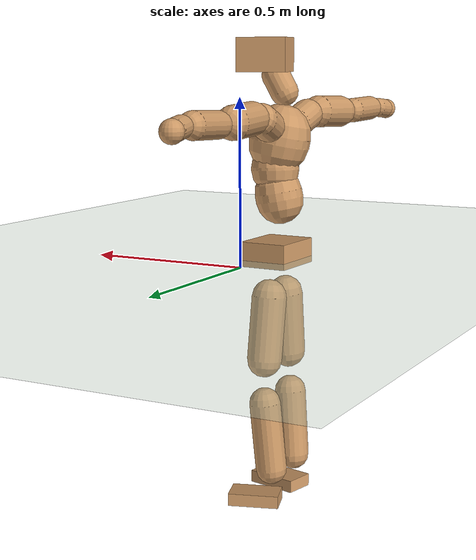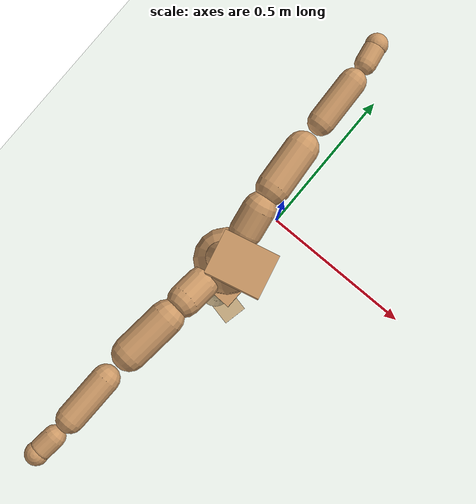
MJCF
<mujoco model="humanoid">
  <compiler coordinate="local" angle="radian"/>
  <default>
    <joint damping="0.0" armature="0.01" stiffness="0.0" limited="true"/>
    <geom conaffinity="1" condim="3" contype="7" margin="0.001" rgba="0.8 0.6 .4 1"/>
  </default>
  <asset>
    <texture type="skybox" builtin="gradient" rgb1=".4 .5 .6" rgb2="0 0 0" width="100" height="100"/>
    <texture builtin="flat" height="1278" mark="cross" markrgb="1 1 1" name="texgeom" random="0.01" rgb1="0.8 0.6 0.4" rgb2="0.8 0.6 0.4" type="cube" width="127"/>
    <texture builtin="checker" height="100" name="texplane" rgb1="0 0 0" rgb2="0.8 0.8 0.8" type="2d" width="100"/>
    <material name="MatPlane" reflectance="0.5" shininess="1" specular="1" texrepeat="60 60" texture="texplane"/>
    <material name="geom" texture="texgeom" texuniform="true"/>
  </asset>
  <worldbody>
    <light cutoff="100" diffuse="1 1 1" dir="-0 0 -1.3" directional="true" exponent="1" pos="0 0 1.3" specular=".1 .1 .1"/>
    <geom conaffinity="1" condim="3" name="floor" pos="0 0 0" rgba="0.8 0.9 0.8 1" size="100 100 .2" type="plane" material="MatPlane"/>
    <body name="Pelvis" pos="-0.0017 -0.2192 0.0243">
      <freejoint name="Pelvis"/>
      <geom type="box" contype="1" conaffinity="1" density="500" pos="-0.0099 0.0003 -0.0074" size="0.0748 0.0939 0.0386" quat="0.9999 0.0000 0.0000 -0.0145" name="Pelvis"/>
      <body name="L_Hip" pos="-0.016 0.0516 -0.0725">
        <joint name="L_Hip_x" type="hinge" pos="0 0 0" axis="1 0 0" stiffness="800" damping="80" armature="0.02" range="-180.0000 180.0000"/>
        <joint name="L_Hip_y" type="hinge" pos="0 0 0" axis="0 1 0" stiffness="800" damping="80" armature="0.02" range="-180.0000 180.0000"/>
        <joint name="L_Hip_z" type="hinge" pos="0 0 0" axis="0 0 1" stiffness="800" damping="80" armature="0.02" range="-180.0000 180.0000"/>
        <geom type="capsule" contype="1" conaffinity="1" density="500" fromto="0.0017 0.0072 -0.0661 0.0068 0.0288 -0.2644" size="0.0539" name="L_Hip"/>
        <body name="L_Knee" pos="0.0085 0.036 -0.3305">
          <joint name="L_Knee_x" type="hinge" pos="0 0 0" axis="1 0 0" stiffness="800" damping="80" armature="0.02" range="-180.0000 180.0000"/>
          <joint name="L_Knee_y" type="hinge" pos="0 0 0" axis="0 1 0" stiffness="800" damping="80" armature="0.02" range="-180.0000 180.0000"/>
          <joint name="L_Knee_z" type="hinge" pos="0 0 0" axis="0 0 1" stiffness="800" damping="80" armature="0.02" range="-180.0000 180.0000"/>
          <geom type="capsule" contype="1" conaffinity="1" density="500" fromto="-0.0064 -0.0025 -0.0711 -0.0256 -0.0102 -0.2845" size="0.0488" name="L_Knee"/>
          <body name="L_Ankle" pos="-0.0319 -0.0127 -0.3557">
            <joint name="L_Ankle_x" type="hinge" pos="0 0 0" axis="1 0 0" stiffness="800" damping="80" armature="0.02" range="-180.0000 180.0000"/>
            <joint name="L_Ankle_y" type="hinge" pos="0 0 0" axis="0 1 0" stiffness="800" damping="80" armature="0.02" range="-180.0000 180.0000"/>
            <joint name="L_Ankle_z" type="hinge" pos="0 0 0" axis="0 0 1" stiffness="800" damping="80" armature="0.02" range="-180.0000 180.0000"/>
            <geom type="box" contype="1" conaffinity="1" density="500" pos="0.0552 0.0178 -0.0258" size="0.0795 0.0465 0.0196" quat="0.9878 0.0000 0.0000 0.1555" name="L_Ankle"/>
            <body name="L_Toe" pos="0.1104 0.0356 -0.0517">
              <joint name="L_Toe_x" type="hinge" pos="0 0 0" axis="1 0 0" stiffness="500" damping="50" armature="0.02" range="-180.0000 180.0000"/>
              <joint name="L_Toe_y" type="hinge" pos="0 0 0" axis="0 1 0" stiffness="500" damping="50" armature="0.02" range="-180.0000 180.0000"/>
              <joint name="L_Toe_z" type="hinge" pos="0 0 0" axis="0 0 1" stiffness="500" damping="50" armature="0.02" range="-180.0000 180.0000"/>
              <geom type="box" contype="1" conaffinity="1" density="500" pos="0.0000 0.0000 0.0251" size="0.001 0.0023 0.0009" quat="0.9870 0.0000 0.0000 0.1608" name="L_Toe"/>
            </body>
          </body>
        </body>
      </body>
      <body name="R_Hip" pos="-0.012 -0.0535 -0.0803">
        <joint name="R_Hip_x" type="hinge" pos="0 0 0" axis="1 0 0" stiffness="800" damping="80" armature="0.02" range="-180.0000 180.0000"/>
        <joint name="R_Hip_y" type="hinge" pos="0 0 0" axis="0 1 0" stiffness="800" damping="80" armature="0.02" range="-180.0000 180.0000"/>
        <joint name="R_Hip_z" type="hinge" pos="0 0 0" axis="0 0 1" stiffness="800" damping="80" armature="0.02" range="-180.0000 180.0000"/>
        <geom type="capsule" contype="1" conaffinity="1" density="500" fromto="-0.0003 -0.0069 -0.0650 -0.0012 -0.0275 -0.2601" size="0.0535" name="R_Hip"/>
        <body name="R_Knee" pos="-0.0015 -0.0344 -0.3252">
          <joint name="R_Knee_x" type="hinge" pos="0 0 0" axis="1 0 0" stiffness="800" damping="80" armature="0.02" range="-180.0000 180.0000"/>
          <joint name="R_Knee_y" type="hinge" pos="0 0 0" axis="0 1 0" stiffness="800" damping="80" armature="0.02" range="-180.0000 180.0000"/>
          <joint name="R_Knee_z" type="hinge" pos="0 0 0" axis="0 0 1" stiffness="800" damping="80" armature="0.02" range="-180.0000 180.0000"/>
          <geom type="capsule" contype="1" conaffinity="1" density="500" fromto="-0.0058 0.0032 -0.0696 -0.0233 0.0128 -0.2783" size="0.0497" name="R_Knee"/>
          <body name="R_Ankle" pos="-0.0291 0.016 -0.3479">
            <joint name="R_Ankle_x" type="hinge" pos="0 0 0" axis="1 0 0" stiffness="800" damping="80" armature="0.02" range="-180.0000 180.0000"/>
            <joint name="R_Ankle_y" type="hinge" pos="0 0 0" axis="0 1 0" stiffness="800" damping="80" armature="0.02" range="-180.0000 180.0000"/>
            <joint name="R_Ankle_z" type="hinge" pos="0 0 0" axis="0 0 1" stiffness="800" damping="80" armature="0.02" range="-180.0000 180.0000"/>
            <geom type="box" contype="1" conaffinity="1" density="500" pos="0.0587 -0.0128 -0.0271" size="0.0822 0.0478 0.0194" quat="0.9942 0.0000 0.0000 -0.1073" name="R_Ankle"/>
            <body name="R_Toe" pos="0.1175 -0.0257 -0.0542">
              <joint name="R_Toe_x" type="hinge" pos="0 0 0" axis="1 0 0" stiffness="500" damping="50" armature="0.02" range="-180.0000 180.0000"/>
              <joint name="R_Toe_y" type="hinge" pos="0 0 0" axis="0 1 0" stiffness="500" damping="50" armature="0.02" range="-180.0000 180.0000"/>
              <joint name="R_Toe_z" type="hinge" pos="0 0 0" axis="0 0 1" stiffness="500" damping="50" armature="0.02" range="-180.0000 180.0000"/>
              <geom type="box" contype="1" conaffinity="1" density="500" pos="0.0000 0.0000 0.0286" size="0.001 0.0024 0.001" quat="0.9952 0.0000 0.0000 -0.0976" name="R_Toe"/>
            </body>
          </body>
        </body>
      </body>
      <body name="Torso" pos="-0.0313 0.0036 0.1084">
        <joint name="Torso_x" type="hinge" pos="0 0 0" axis="1 0 0" stiffness="1000" damping="100" armature="0.02" range="-180.0000 180.0000"/>
        <joint name="Torso_y" type="hinge" pos="0 0 0" axis="0 1 0" stiffness="1000" damping="100" armature="0.02" range="-180.0000 180.0000"/>
        <joint name="Torso_z" type="hinge" pos="0 0 0" axis="0 0 1" stiffness="1000" damping="100" armature="0.02" range="-180.0000 180.0000"/>
        <geom type="capsule" contype="1" conaffinity="1" density="500" fromto="0.0139 0.0025 0.0724 0.0093 0.0017 0.0483" size="0.0739" name="Torso"/>
        <body name="Spine" pos="0.0231 0.0042 0.1207">
          <joint name="Spine_x" type="hinge" pos="0 0 0" axis="1 0 0" stiffness="1000" damping="100" armature="0.02" range="-180.0000 180.0000"/>
          <joint name="Spine_y" type="hinge" pos="0 0 0" axis="0 1 0" stiffness="1000" damping="100" armature="0.02" range="-180.0000 180.0000"/>
          <joint name="Spine_z" type="hinge" pos="0 0 0" axis="0 0 1" stiffness="1000" damping="100" armature="0.02" range="-180.0000 180.0000"/>
          <geom type="capsule" contype="1" conaffinity="1" density="500" fromto="0.0014 -0.0009 0.0294 0.0009 -0.0006 0.0196" size="0.0738" name="Spine"/>
          <body name="Chest" pos="0.0023 -0.0016 0.049">
            <joint name="Chest_x" type="hinge" pos="0 0 0" axis="1 0 0" stiffness="1000" damping="100" armature="0.02" range="-180.0000 180.0000"/>
            <joint name="Chest_y" type="hinge" pos="0 0 0" axis="0 1 0" stiffness="1000" damping="100" armature="0.02" range="-180.0000 180.0000"/>
            <joint name="Chest_z" type="hinge" pos="0 0 0" axis="0 0 1" stiffness="1000" damping="100" armature="0.02" range="-180.0000 180.0000"/>
            <geom type="capsule" contype="1" conaffinity="1" density="500" fromto="-0.0154 -0.0054 0.0792 -0.0103 -0.0036 0.0528" size="0.0945" name="Chest"/>
            <body name="Neck" pos="-0.0334 -0.014 0.1915">
              <joint name="Neck_x" type="hinge" pos="0 0 0" axis="1 0 0" stiffness="500" damping="50" armature="0.02" range="-180.0000 180.0000"/>
              <joint name="Neck_y" type="hinge" pos="0 0 0" axis="0 1 0" stiffness="500" damping="50" armature="0.02" range="-180.0000 180.0000"/>
              <joint name="Neck_z" type="hinge" pos="0 0 0" axis="0 0 1" stiffness="500" damping="50" armature="0.02" range="-180.0000 180.0000"/>
              <geom type="capsule" contype="1" conaffinity="1" density="500" fromto="0.0090 0.0018 0.0170 0.0360 0.0074 0.0678" size="0.0434" name="Neck"/>
              <body name="Head" pos="0.045 0.0092 0.0848">
                <joint name="Head_x" type="hinge" pos="0 0 0" axis="1 0 0" stiffness="500" damping="50" armature="0.02" range="-180.0000 180.0000"/>
                <joint name="Head_y" type="hinge" pos="0 0 0" axis="0 1 0" stiffness="500" damping="50" armature="0.02" range="-180.0000 180.0000"/>
                <joint name="Head_z" type="hinge" pos="0 0 0" axis="0 0 1" stiffness="500" damping="50" armature="0.02" range="-180.0000 180.0000"/>
                <geom type="box" contype="1" conaffinity="1" density="500" pos="0.0235 0.0056 0.0434" size="0.0763 0.0606 0.0518" quat="0.9932 0.0000 0.0000 0.1167" name="Head"/>
              </body>
            </body>
            <body name="L_Thorax" pos="-0.02 0.0656 0.1021">
              <joint name="L_Thorax_x" type="hinge" pos="0 0 0" axis="1 0 0" stiffness="500" damping="50" armature="0.02" range="-180.0000 180.0000"/>
              <joint name="L_Thorax_y" type="hinge" pos="0 0 0" axis="0 1 0" stiffness="500" damping="50" armature="0.02" range="-180.0000 180.0000"/>
              <joint name="L_Thorax_z" type="hinge" pos="0 0 0" axis="0 0 1" stiffness="500" damping="50" armature="0.02" range="-180.0000 180.0000"/>
              <geom type="capsule" contype="1" conaffinity="1" density="500" fromto="-0.0036 0.0238 0.0078 -0.0144 0.0953 0.0313" size="0.0483" name="L_Thorax"/>
              <body name="L_Shoulder" pos="-0.018 0.1191 0.0392">
                <joint name="L_Shoulder_x" type="hinge" pos="0 0 0" axis="1 0 0" stiffness="500" damping="50" armature="0.02" range="-720.0000 720.0000"/>
                <joint name="L_Shoulder_y" type="hinge" pos="0 0 0" axis="0 1 0" stiffness="500" damping="50" armature="0.02" range="-720.0000 720.0000"/>
                <joint name="L_Shoulder_z" type="hinge" pos="0 0 0" axis="0 0 1" stiffness="500" damping="50" armature="0.02" range="-720.0000 720.0000"/>
                <geom type="capsule" contype="1" conaffinity="1" density="500" fromto="-0.0035 0.0455 -0.0020 -0.0140 0.1819 -0.0080" size="0.0497" name="L_Shoulder"/>
                <body name="L_Elbow" pos="-0.0175 0.2274 -0.01">
                  <joint name="L_Elbow_x" type="hinge" pos="0 0 0" axis="1 0 0" stiffness="500" damping="50" armature="0.02" range="-720.0000 720.0000"/>
                  <joint name="L_Elbow_y" type="hinge" pos="0 0 0" axis="0 1 0" stiffness="500" damping="50" armature="0.02" range="-720.0000 720.0000"/>
                  <joint name="L_Elbow_z" type="hinge" pos="0 0 0" axis="0 0 1" stiffness="500" damping="50" armature="0.02" range="-720.0000 720.0000"/>
                  <geom type="capsule" contype="1" conaffinity="1" density="500" fromto="-0.0017 0.0473 0.0017 -0.0067 0.1892 0.0069" size="0.0396" name="L_Elbow"/>
                  <body name="L_Wrist" pos="-0.0084 0.2365 0.0087">
                    <joint name="L_Wrist_x" type="hinge" pos="0 0 0" axis="1 0 0" stiffness="300" damping="30" armature="0.02" range="-180.0000 180.0000"/>
                    <joint name="L_Wrist_y" type="hinge" pos="0 0 0" axis="0 1 0" stiffness="300" damping="30" armature="0.02" range="-180.0000 180.0000"/>
                    <joint name="L_Wrist_z" type="hinge" pos="0 0 0" axis="0 0 1" stiffness="300" damping="30" armature="0.02" range="-180.0000 180.0000"/>
                    <geom type="capsule" contype="1" conaffinity="1" density="500" fromto="-0.0028 0.0161 -0.0019 -0.0114 0.0644 -0.0078" size="0.0318" name="L_Wrist"/>
                    <body name="L_Hand" pos="-0.0142 0.0805 -0.0097">
                      <joint name="L_Hand_x" type="hinge" pos="0 0 0" axis="1 0 0" stiffness="300" damping="30" armature="0.02" range="-180.0000 180.0000"/>
                      <joint name="L_Hand_y" type="hinge" pos="0 0 0" axis="0 1 0" stiffness="300" damping="30" armature="0.02" range="-180.0000 180.0000"/>
                      <joint name="L_Hand_z" type="hinge" pos="0 0 0" axis="0 0 1" stiffness="300" damping="30" armature="0.02" range="-180.0000 180.0000"/>
                      <geom type="sphere" contype="1" conaffinity="1" density="500" size="0.0331" pos="0.0000 0.0000 0.0000" name="L_Hand"/>
                    </body>
                  </body>
                </body>
              </body>
            </body>
            <body name="R_Thorax" pos="-0.0236 -0.0785 0.1022">
              <joint name="R_Thorax_x" type="hinge" pos="0 0 0" axis="1 0 0" stiffness="500" damping="50" armature="0.02" range="-180.0000 180.0000"/>
              <joint name="R_Thorax_y" type="hinge" pos="0 0 0" axis="0 1 0" stiffness="500" damping="50" armature="0.02" range="-180.0000 180.0000"/>
              <joint name="R_Thorax_z" type="hinge" pos="0 0 0" axis="0 0 1" stiffness="500" damping="50" armature="0.02" range="-180.0000 180.0000"/>
              <geom type="capsule" contype="1" conaffinity="1" density="500" fromto="-0.0016 -0.0217 0.0081 -0.0065 -0.0867 0.0324" size="0.0487" name="R_Thorax"/>
              <body name="R_Shoulder" pos="-0.0082 -0.1084 0.0404">
                <joint name="R_Shoulder_x" type="hinge" pos="0 0 0" axis="1 0 0" stiffness="500" damping="50" armature="0.02" range="-720.0000 720.0000"/>
                <joint name="R_Shoulder_y" type="hinge" pos="0 0 0" axis="0 1 0" stiffness="500" damping="50" armature="0.02" range="-720.0000 720.0000"/>
                <joint name="R_Shoulder_z" type="hinge" pos="0 0 0" axis="0 0 1" stiffness="500" damping="50" armature="0.02" range="-720.0000 720.0000"/>
                <geom type="capsule" contype="1" conaffinity="1" density="500" fromto="-0.0049 -0.0463 -0.0015 -0.0197 -0.1853 -0.0062" size="0.0507" name="R_Shoulder"/>
                <body name="R_Elbow" pos="-0.0247 -0.2316 -0.0077">
                  <joint name="R_Elbow_x" type="hinge" pos="0 0 0" axis="1 0 0" stiffness="500" damping="50" armature="0.02" range="-720.0000 720.0000"/>
                  <joint name="R_Elbow_y" type="hinge" pos="0 0 0" axis="0 1 0" stiffness="500" damping="50" armature="0.02" range="-720.0000 720.0000"/>
                  <joint name="R_Elbow_z" type="hinge" pos="0 0 0" axis="0 0 1" stiffness="500" damping="50" armature="0.02" range="-720.0000 720.0000"/>
                  <geom type="capsule" contype="1" conaffinity="1" density="500" fromto="-0.0010 -0.0479 0.0010 -0.0038 -0.1917 0.0039" size="0.0406" name="R_Elbow"/>
                  <body name="R_Wrist" pos="-0.0048 -0.2396 0.0049">
                    <joint name="R_Wrist_x" type="hinge" pos="0 0 0" axis="1 0 0" stiffness="300" damping="30" armature="0.02" range="-180.0000 180.0000"/>
                    <joint name="R_Wrist_y" type="hinge" pos="0 0 0" axis="0 1 0" stiffness="300" damping="30" armature="0.02" range="-180.0000 180.0000"/>
                    <joint name="R_Wrist_z" type="hinge" pos="0 0 0" axis="0 0 1" stiffness="300" damping="30" armature="0.02" range="-180.0000 180.0000"/>
                    <geom type="capsule" contype="1" conaffinity="1" density="500" fromto="-0.0018 -0.0165 -0.0016 -0.0074 -0.0662 -0.0064" size="0.0327" name="R_Wrist"/>
                    <body name="R_Hand" pos="-0.0092 -0.0827 -0.0081">
                      <joint name="R_Hand_x" type="hinge" pos="0 0 0" axis="1 0 0" stiffness="300" damping="30" armature="0.02" range="-180.0000 180.0000"/>
                      <joint name="R_Hand_y" type="hinge" pos="0 0 0" axis="0 1 0" stiffness="300" damping="30" armature="0.02" range="-180.0000 180.0000"/>
                      <joint name="R_Hand_z" type="hinge" pos="0 0 0" axis="0 0 1" stiffness="300" damping="30" armature="0.02" range="-180.0000 180.0000"/>
                      <geom type="sphere" contype="1" conaffinity="1" density="500" size="0.0338" pos="0.0000 0.0000 0.0000" name="R_Hand"/>
                    </body>
                  </body>
                </body>
              </body>
            </body>
          </body>
        </body>
      </body>
    </body>
  </worldbody>
  <actuator>
    <motor name="L_Hip_x" joint="L_Hip_x" gear="500"/>
    <motor name="L_Hip_y" joint="L_Hip_y" gear="500"/>
    <motor name="L_Hip_z" joint="L_Hip_z" gear="500"/>
    <motor name="L_Knee_x" joint="L_Knee_x" gear="500"/>
    <motor name="L_Knee_y" joint="L_Knee_y" gear="500"/>
    <motor name="L_Knee_z" joint="L_Knee_z" gear="500"/>
    <motor name="L_Ankle_x" joint="L_Ankle_x" gear="500"/>
    <motor name="L_Ankle_y" joint="L_Ankle_y" gear="500"/>
    <motor name="L_Ankle_z" joint="L_Ankle_z" gear="500"/>
    <motor name="L_Toe_x" joint="L_Toe_x" gear="500"/>
    <motor name="L_Toe_y" joint="L_Toe_y" gear="500"/>
    <motor name="L_Toe_z" joint="L_Toe_z" gear="500"/>
    <motor name="R_Hip_x" joint="R_Hip_x" gear="500"/>
    <motor name="R_Hip_y" joint="R_Hip_y" gear="500"/>
    <motor name="R_Hip_z" joint="R_Hip_z" gear="500"/>
    <motor name="R_Knee_x" joint="R_Knee_x" gear="500"/>
    <motor name="R_Knee_y" joint="R_Knee_y" gear="500"/>
    <motor name="R_Knee_z" joint="R_Knee_z" gear="500"/>
    <motor name="R_Ankle_x" joint="R_Ankle_x" gear="500"/>
    <motor name="R_Ankle_y" joint="R_Ankle_y" gear="500"/>
    <motor name="R_Ankle_z" joint="R_Ankle_z" gear="500"/>
    <motor name="R_Toe_x" joint="R_Toe_x" gear="500"/>
    <motor name="R_Toe_y" joint="R_Toe_y" gear="500"/>
    <motor name="R_Toe_z" joint="R_Toe_z" gear="500"/>
    <motor name="Torso_x" joint="Torso_x" gear="500"/>
    <motor name="Torso_y" joint="Torso_y" gear="500"/>
    <motor name="Torso_z" joint="Torso_z" gear="500"/>
    <motor name="Spine_x" joint="Spine_x" gear="500"/>
    <motor name="Spine_y" joint="Spine_y" gear="500"/>
    <motor name="Spine_z" joint="Spine_z" gear="500"/>
    <motor name="Chest_x" joint="Chest_x" gear="500"/>
    <motor name="Chest_y" joint="Chest_y" gear="500"/>
    <motor name="Chest_z" joint="Chest_z" gear="500"/>
    <motor name="Neck_x" joint="Neck_x" gear="500"/>
    <motor name="Neck_y" joint="Neck_y" gear="500"/>
    <motor name="Neck_z" joint="Neck_z" gear="500"/>
    <motor name="Head_x" joint="Head_x" gear="500"/>
    <motor name="Head_y" joint="Head_y" gear="500"/>
    <motor name="Head_z" joint="Head_z" gear="500"/>
    <motor name="L_Thorax_x" joint="L_Thorax_x" gear="500"/>
    <motor name="L_Thorax_y" joint="L_Thorax_y" gear="500"/>
    <motor name="L_Thorax_z" joint="L_Thorax_z" gear="500"/>
    <motor name="L_Shoulder_x" joint="L_Shoulder_x" gear="500"/>
    <motor name="L_Shoulder_y" joint="L_Shoulder_y" gear="500"/>
    <motor name="L_Shoulder_z" joint="L_Shoulder_z" gear="500"/>
    <motor name="L_Elbow_x" joint="L_Elbow_x" gear="500"/>
    <motor name="L_Elbow_y" joint="L_Elbow_y" gear="500"/>
    <motor name="L_Elbow_z" joint="L_Elbow_z" gear="500"/>
    <motor name="L_Wrist_x" joint="L_Wrist_x" gear="500"/>
    <motor name="L_Wrist_y" joint="L_Wrist_y" gear="500"/>
    <motor name="L_Wrist_z" joint="L_Wrist_z" gear="500"/>
    <motor name="L_Hand_x" joint="L_Hand_x" gear="500"/>
    <motor name="L_Hand_y" joint="L_Hand_y" gear="500"/>
    <motor name="L_Hand_z" joint="L_Hand_z" gear="500"/>
    <motor name="R_Thorax_x" joint="R_Thorax_x" gear="500"/>
    <motor name="R_Thorax_y" joint="R_Thorax_y" gear="500"/>
    <motor name="R_Thorax_z" joint="R_Thorax_z" gear="500"/>
    <motor name="R_Shoulder_x" joint="R_Shoulder_x" gear="500"/>
    <motor name="R_Shoulder_y" joint="R_Shoulder_y" gear="500"/>
    <motor name="R_Shoulder_z" joint="R_Shoulder_z" gear="500"/>
    <motor name="R_Elbow_x" joint="R_Elbow_x" gear="500"/>
    <motor name="R_Elbow_y" joint="R_Elbow_y" gear="500"/>
    <motor name="R_Elbow_z" joint="R_Elbow_z" gear="500"/>
    <motor name="R_Wrist_x" joint="R_Wrist_x" gear="500"/>
    <motor name="R_Wrist_y" joint="R_Wrist_y" gear="500"/>
    <motor name="R_Wrist_z" joint="R_Wrist_z" gear="500"/>
    <motor name="R_Hand_x" joint="R_Hand_x" gear="500"/>
    <motor name="R_Hand_y" joint="R_Hand_y" gear="500"/>
    <motor name="R_Hand_z" joint="R_Hand_z" gear="500"/>
  </actuator>
  <contact>
    <exclude body1="Torso" body2="Chest"/>
    <exclude body1="Head" body2="Chest"/>
    <exclude body1="R_Knee" body2="R_Toe"/>
    <exclude body1="R_Knee" body2="L_Ankle"/>
    <exclude body1="R_Knee" body2="L_Toe"/>
    <exclude body1="L_Knee" body2="L_Toe"/>
    <exclude body1="L_Knee" body2="R_Ankle"/>
    <exclude body1="L_Knee" body2="R_Toe"/>
    <exclude body1="L_Shoulder" body2="Chest"/>
    <exclude body1="R_Shoulder" body2="Chest"/>
  </contact>
  <sensor/>
  <size njmax="700" nconmax="700"/>
</mujoco>
